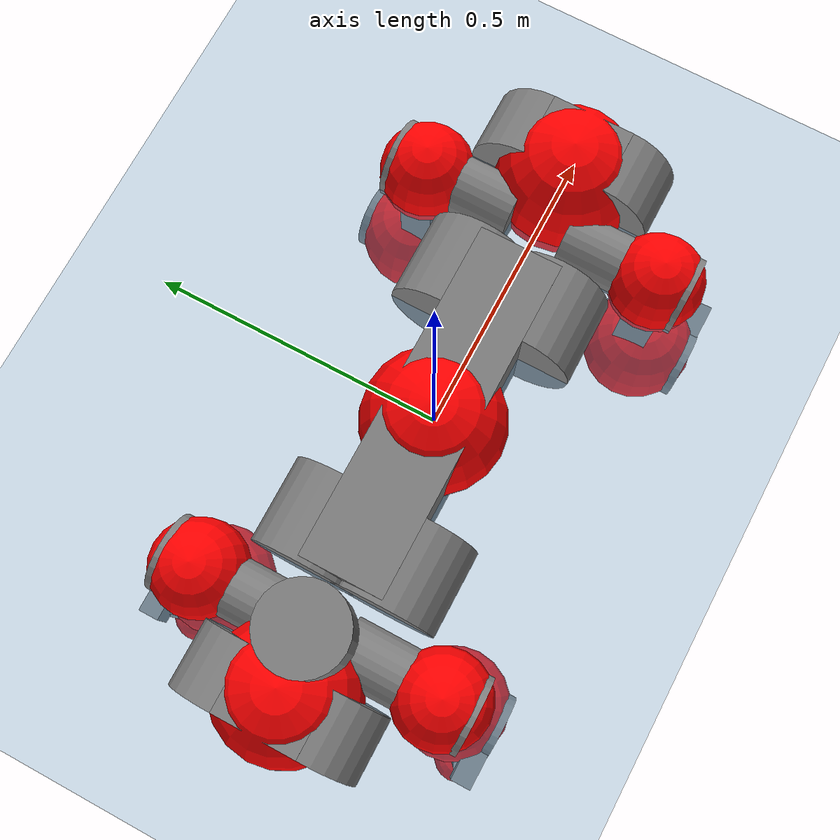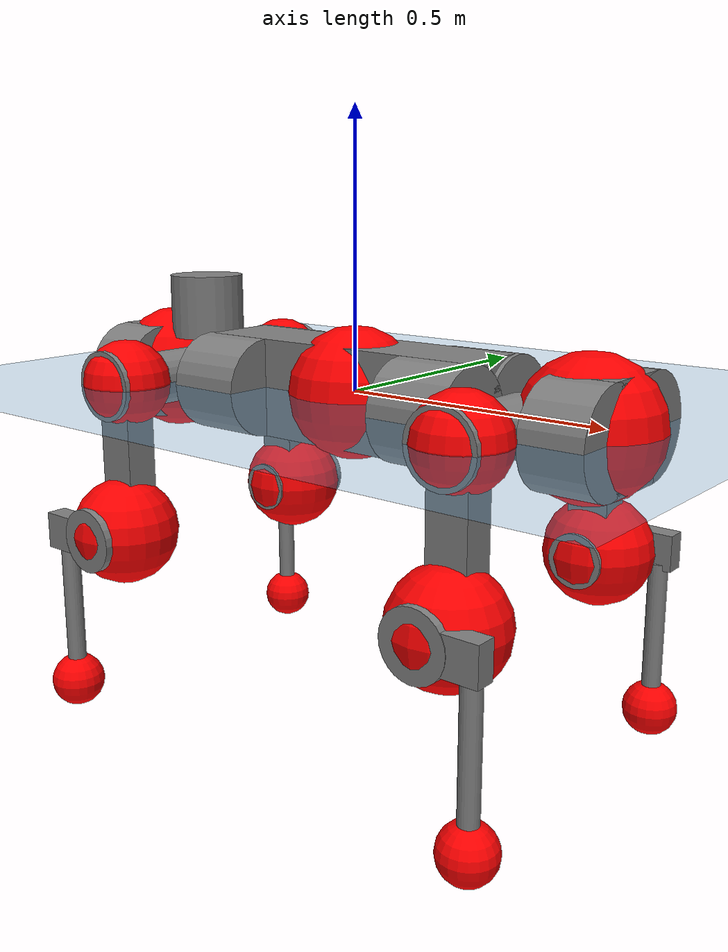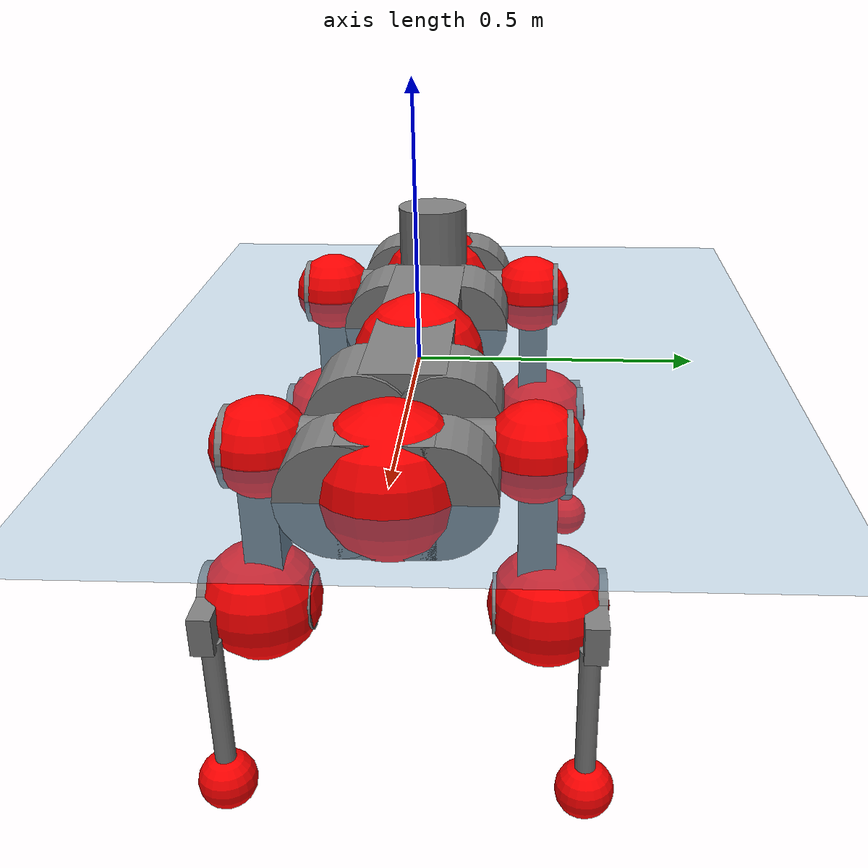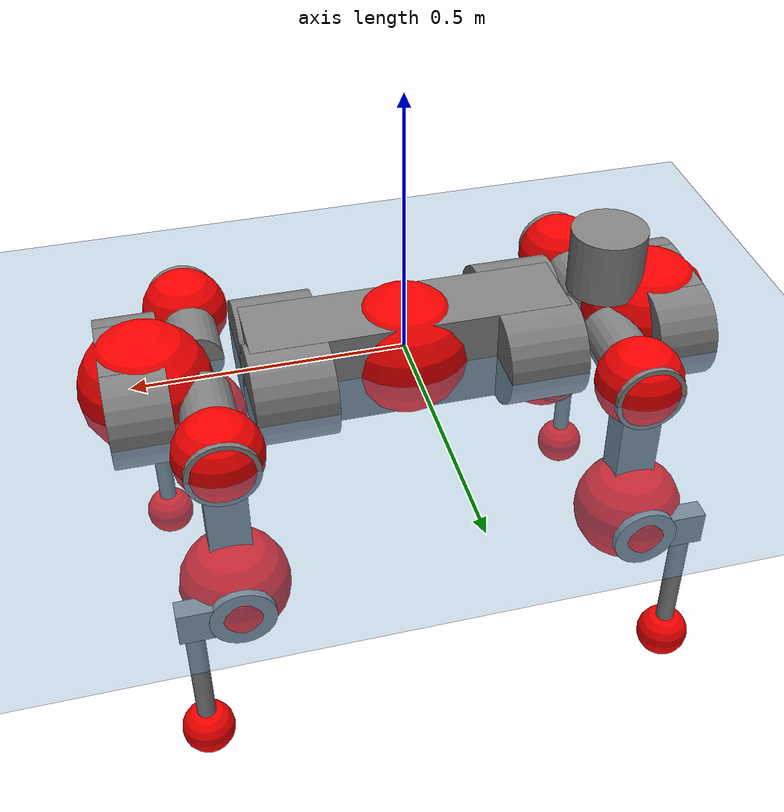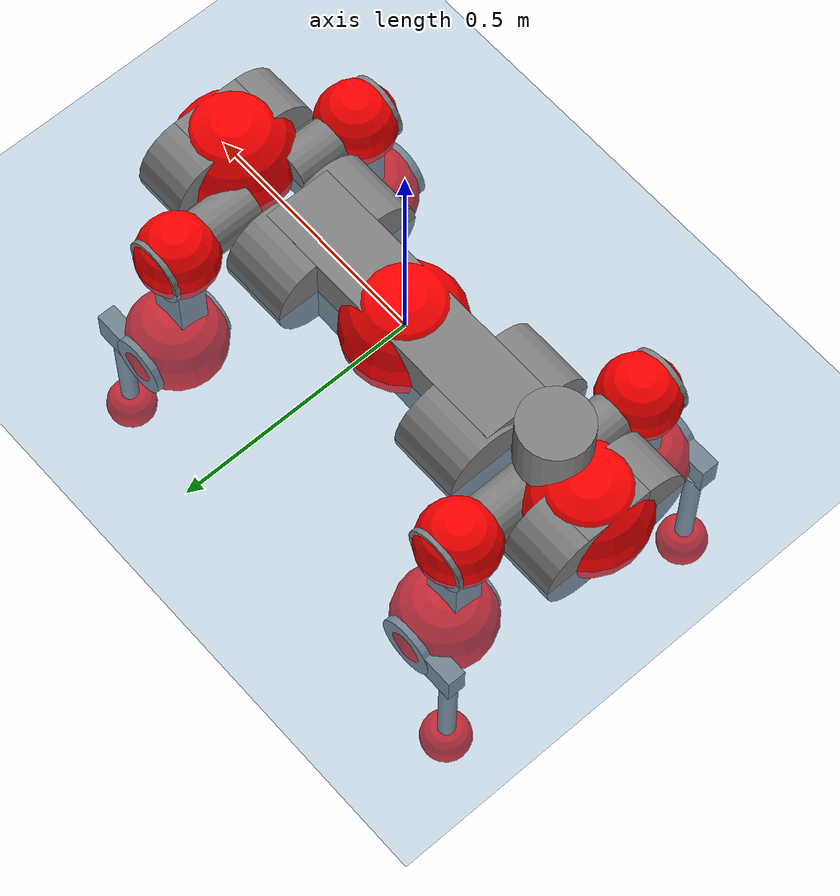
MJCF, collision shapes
<mujoco model="anymal_c">
  <compiler angle="radian" assetdir="assets" balanceinertia="true" inertiafromgeom="false"/>

  <option timestep="0.005" density="1.2" viscosity="2e-05"/>

  <size nkey="1"/>

  <visual>
    <quality shadowsize="8192"/>
    <map shadowclip="0.5"/>
  </visual>

  <default>
    <default class="/">
      <material specular="0" shininess="0.25"/>
      <geom contype="0" conaffinity="0" group="1" solref="-1000 -80"/>
      <site size="0.01 0.005 0.005" group="5"/>
      <general forcelimited="true" forcerange="-80 80" biastype="affine" gainprm="80" biasprm="0 -80 -2"/>
      <default class="anymal_c">
        <joint armature="0.01" damping="0.01" frictionloss="0.1"/>
        <default class="visual">
          <geom type="mesh" group="2"/>
          <default class="visual_zflip"/>
        </default>
        <default class="collision">
          <geom type="cylinder" group="3"/>
          <default class="foot">
            <geom size="0.03 0 0" type="sphere" condim="6" priority="1" friction="0.8 0.02 0.01" solimp="0.015 1 0.03"/>
          </default>
        </default>
      </default>
      <default class="reward_collision_sphere">
        <geom group="5" rgba="1 0 0 1"/>
      </default>
    </default>
  </default>

  <asset>
    <texture type="skybox" colorspace="auto" name="//unnamed_texture_0" builtin="gradient" rgb1="0.95 0.95 0.95" rgb2="0.95 0.95 0.95" width="100" height="600"/>
    <texture type="2d" colorspace="auto" name="texplane" builtin="checker" rgb1="0.345 0.575 0.748" rgb2="0.345 0.575 0.748" markrgb="1 1 1" width="512" height="512"/>
    <texture type="2d" colorspace="linear" name="base" file="base.png"/>
    <texture type="2d" colorspace="linear" name="top_shell" file="top_shell.png"/>
    <texture type="2d" colorspace="linear" name="bottom_shell" file="bottom_shell.png"/>
    <texture type="2d" colorspace="linear" name="remote" file="remote.png"/>
    <texture type="2d" colorspace="linear" name="hatch" file="hatch.png"/>
    <texture type="2d" colorspace="linear" name="handle" file="handle.png"/>
    <texture type="2d" colorspace="linear" name="face" file="face.png"/>
    <texture type="2d" colorspace="linear" name="battery" file="battery.png"/>
    <texture type="2d" colorspace="linear" name="lidar_cage" file="lidar_cage.png"/>
    <texture type="2d" colorspace="linear" name="depth_camera" file="depth_camera.png"/>
    <texture type="2d" colorspace="linear" name="wide_angle_camera" file="wide_angle_camera.png"/>
    <texture type="2d" colorspace="linear" name="lidar" file="lidar.png"/>
    <texture type="2d" colorspace="linear" name="drive" file="drive.png"/>
    <texture type="2d" colorspace="linear" name="hip_l" file="hip_l.png"/>
    <texture type="2d" colorspace="linear" name="shank_l" file="shank_l.png"/>
    <texture type="2d" colorspace="linear" name="foot" file="foot.png"/>
    <texture type="2d" colorspace="linear" name="thigh" file="thigh.png"/>
    <texture type="2d" colorspace="linear" name="shank_r" file="shank_r.png"/>
    <texture type="2d" colorspace="linear" name="hip_r" file="hip_r.png"/>
    <material name="MatPlane" class="/" texture="texplane" texuniform="true" texrepeat="2 2" specular="0.9" shininess="0.5"/>
    <material name="black_plastic" class="/" rgba="0.007 0.007 0.007 1"/>
    <material name="green" class="/" rgba="0.052 0.178 0.033 1"/>
    <material name="red" class="/" rgba="0.178 0.006 0.005 1"/>
    <material name="yellow" class="/" rgba="0.178 0.119 0.006 1"/>
    <material name="lwl" class="/" rgba="0.8 0.8 0.8 1"/>
    <material name="base" class="/" texture="base"/>
    <material name="top_shell" class="/" texture="top_shell"/>
    <material name="bottom_shell" class="/" texture="bottom_shell"/>
    <material name="hip_l" class="/" texture="hip_l"/>
    <material name="thigh" class="/" texture="thigh"/>
    <material name="shank_l" class="/" texture="shank_l"/>
    <material name="foot" class="/" texture="foot"/>
    <material name="hip_r" class="/" texture="hip_r"/>
    <material name="shank" class="/" texture="shank_r"/>
    <material name="hatch" class="/" texture="hatch"/>
    <material name="remote" class="/" texture="remote"/>
    <material name="handle" class="/" texture="handle"/>
    <material name="face" class="/" texture="face"/>
    <material name="depth_camera" class="/" texture="depth_camera"/>
    <material name="wide_angle_camera" class="/" texture="wide_angle_camera"/>
    <material name="battery" class="/" texture="battery"/>
    <material name="lidar_cage" class="/" texture="lidar_cage"/>
    <material name="lidar" class="/" texture="lidar"/>
    <material name="drive" class="/" texture="drive"/>
    <mesh name="base_0" class="/" file="base_0.obj"/>
    <mesh name="base_1" class="/" file="base_1.obj"/>
    <mesh name="base_2" class="/" file="base_2.obj"/>
    <mesh name="base_3" class="/" file="base_3.obj"/>
    <mesh name="base_4" class="/" file="base_4.obj"/>
    <mesh name="base_5" class="/" file="base_5.obj"/>
    <mesh name="top_shell" class="/" file="top_shell.obj"/>
    <mesh name="bottom_shell" class="/" file="bottom_shell.obj"/>
    <mesh name="remote" class="/" file="remote.obj"/>
    <mesh name="handle" class="/" file="handle.obj"/>
    <mesh name="face" class="/" file="face.obj"/>
    <mesh name="wide_angle_camera" class="/" file="wide_angle_camera.obj"/>
    <mesh name="depth_camera" class="/" file="depth_camera.obj"/>
    <mesh name="battery" class="/" file="battery.obj"/>
    <mesh name="lidar_cage" class="/" file="lidar_cage.obj"/>
    <mesh name="lidar" class="/" file="lidar.obj"/>
    <mesh name="drive" class="/" file="drive.obj"/>
    <mesh name="hip_l" class="/" file="hip_l.obj"/>
    <mesh name="thigh" class="/" file="thigh.obj"/>
    <mesh name="shank_l" class="/" file="shank_l.obj"/>
    <mesh name="foot" class="/" file="foot.obj"/>
    <mesh name="hip_r" class="/" file="hip_r.obj"/>
    <mesh name="hatch" class="/" file="hatch.obj"/>
    <mesh name="shank_r" class="/" file="shank_r.obj"/>
  </asset>

  <worldbody>
    <geom name="floor" class="/" size="100 100 0.125" type="plane" group="0" material="MatPlane"/>
    <light name="toplight_shadow" class="/" pos="0 0 5" dir="0.0990148 0.0990148 -0.990148" type="directional" ambient="0.04 0.04 0.04" diffuse="0.55 0.55 0.55" specular="0.12 0.12 0.12"/>
    <light name="toplight_fill" class="/" pos="0 0 5" dir="0.0990148 0.0990148 -0.990148" type="directional" castshadow="false" ambient="0.04 0.04 0.04" diffuse="0.3 0.3 0.3" specular="0.08 0.08 0.08"/>
    <body name="trunk" childclass="anymal_c" pos="-0.00095985 5.26553e-05 -0.00247662" quat="0.999999 0.00108905 -0.000715519 -0.000318335">
      <inertial pos="0.00242609 0.00262563 0.0470277" quat="0.50132 0.502475 0.488715 0.507301" mass="19.6705" diaginertia="0.856786 0.642958 0.20541"/>
      <joint name="//unnamed_joint_0" type="free" armature="0" damping="0" frictionloss="0"/>
      <geom name="//unnamed_geom_1" class="visual" material="green" mesh="base_0"/>
      <geom name="//unnamed_geom_2" class="visual" material="yellow" mesh="base_1"/>
      <geom name="//unnamed_geom_3" class="visual" material="red" mesh="base_2"/>
      <geom name="//unnamed_geom_4" class="visual" material="black_plastic" mesh="base_3"/>
      <geom name="//unnamed_geom_5" class="visual" material="lwl" mesh="base_4"/>
      <geom name="//unnamed_geom_6" class="visual" material="base" mesh="base_5"/>
      <geom name="trunk_1" class="collision" size="0.293147 0.0707597 0.0909767" type="box"/>
      <geom name="trunk_2" class="collision" size="0.0909767 0.0732868" pos="0.228748 0.0698642 0" quat="0.707107 0 0.707107 0"/>
      <geom name="trunk_3" class="collision" size="0.0909767 0.0732868" pos="-0.228748 0.0698642 0" quat="0.707107 0 0.707107 0"/>
      <geom name="trunk_4" class="collision" size="0.0909767 0.0732868" pos="0.228748 -0.0698642 0" quat="0.707107 0 0.707107 0"/>
      <geom name="trunk_5" class="collision" size="0.0909767 0.0732868" pos="-0.228748 -0.0698642 0" quat="0.707107 0 0.707107 0"/>
      <geom name="//unnamed_geom_12" class="visual" material="top_shell" mesh="top_shell"/>
      <geom name="//unnamed_geom_13" class="visual" material="bottom_shell" mesh="bottom_shell"/>
      <geom name="//unnamed_geom_14" class="visual" material="remote" mesh="remote"/>
      <geom name="//unnamed_geom_15" class="visual" material="handle" mesh="handle"/>
      <geom name="//unnamed_geom_16" class="visual" pos="0.435936 0 0" quat="1 0 0 0" material="face" mesh="face"/>
      <geom name="trunk_6" class="collision" size="0.0555969 0.0707597 0.0909767" pos="0.493781 0 0" type="box"/>
      <geom name="//unnamed_geom_18" class="collision" size="0.0909767 0.0555969" pos="0.493781 0.0698642 0" quat="0.707107 0 0.707107 0"/>
      <geom name="//unnamed_geom_19" class="collision" size="0.0909767 0.0555969" pos="0.493781 -0.0698642 0" quat="0.707107 0 0.707107 0"/>
      <geom name="//unnamed_geom_20" class="visual" pos="0.485522 0 -0.0281733" quat="0.965926 0 0.258819 0" material="depth_camera" mesh="depth_camera"/>
      <geom name="//unnamed_geom_21" class="visual" pos="0.53953 0 0.0147122" material="wide_angle_camera" mesh="wide_angle_camera"/>
      <geom name="//unnamed_geom_22" class="visual_zflip" pos="-0.435936 0 0" quat="0 0 0 1" material="face" mesh="face"/>
      <geom name="trunk_7" class="collision" size="0.0555969 0.0707597 0.0909767" pos="-0.493781 0 0" quat="0 0 0 1" type="box"/>
      <geom name="//unnamed_geom_24" class="collision" size="0.0909767 0.0555969" pos="-0.493781 -0.0698642 0" quat="0 -0.707107 0 0.707107"/>
      <geom name="//unnamed_geom_25" class="collision" size="0.0909767 0.0555969" pos="-0.493781 0.0698642 0" quat="0 -0.707107 0 0.707107"/>
      <geom name="//unnamed_geom_26" class="visual" pos="-0.485522 0 -0.0281733" quat="0 -0.258819 0 0.965926" material="depth_camera" mesh="depth_camera"/>
      <geom name="//unnamed_geom_27" class="visual_zflip" pos="-0.53953 0 0.0147122" quat="0 0 0 1" material="wide_angle_camera" mesh="wide_angle_camera"/>
      <geom name="//unnamed_geom_28" class="visual" material="battery" mesh="battery"/>
      <geom name="//unnamed_geom_29" class="visual" pos="0 0.0756047 0.0290737" quat="0.683013 -0.183013 0.183013 0.683013" material="depth_camera" mesh="depth_camera"/>
      <geom name="//unnamed_geom_30" class="visual" pos="0 -0.0756047 0.0290737" quat="0.683013 0.183013 0.183013 -0.683013" material="depth_camera" mesh="depth_camera"/>
      <geom name="//unnamed_geom_31" class="visual" pos="-0.382825 0 0.0722345" quat="1 0 0 0" material="lidar_cage" mesh="lidar_cage"/>
      <geom name="trunk_8" class="collision" size="0.0707597 0.0606511" pos="-0.382825 0 0.131201"/>
      <geom name="//unnamed_geom_33" class="visual" pos="-0.382825 -2.10803e-05 0.139752" quat="0.707107 0 0 -0.707107" material="lidar" mesh="lidar"/>
      <geom name="//unnamed_geom_34" class="visual" pos="0.31541 0.103793 2.63538e-10" quat="0.258819 0.965926 0 0" material="drive" mesh="drive"/>
      <geom name="//unnamed_geom_35" class="visual" pos="0.31541 -0.103793 -2.63538e-10" quat="0.258819 -0.965926 0 0" material="drive" mesh="drive"/>
      <geom name="//unnamed_geom_36" class="visual" pos="-0.31541 0.103793 -2.63538e-10" quat="0 0 0.965926 -0.258819" material="drive" mesh="drive"/>
      <geom name="//unnamed_geom_37" class="visual" pos="-0.31541 -0.103793 2.63538e-10" quat="0 0 -0.965926 -0.258819" material="drive" mesh="drive"/>
      <geom name="//unnamed_geom_38" class="visual" pos="0.121999 0 0.0717431" quat="1 0 0 0" material="hatch" mesh="hatch"/>
      <geom name="//unnamed_geom_39" class="reward_collision_sphere" size="0.121302"/>
      <geom name="//unnamed_geom_40" class="reward_collision_sphere" size="0.121302" pos="0.473272 0 0"/>
      <geom name="//unnamed_geom_41" class="reward_collision_sphere" size="0.121302" pos="-0.473272 0 0"/>
      <site name="imu" pos="0.256507 0.0180766 0.0319291" size="0.0101085"/>
      <camera name="track" pos="0 -1.99612 0" quat="0.707107 0.707107 0 0" mode="trackcom"/>
      <camera name="ego_camera" pos="0.473272 0 -0.0393113" quat="-0.5 -0.5 0.5 0.5"/>
      <body name="LF_HIP" pos="0.316317 0.104789 0.0023782" quat="0.258948 0.965891 0.00016758 -4.16124e-05">
        <inertial pos="0.0569012 -0.0145921 -0.0104347" quat="-0.116592 0.711766 -0.130114 0.680342" mass="2.80276" diaginertia="0.00759911 0.00478012 0.00295106"/>
        <joint name="LF_HAA" pos="0 0 0" axis="0.999929 0.0072679 -0.00943096" range="-0.728832 0.52152" armature="0.010016" damping="0" frictionloss="0.109183"/>
        <geom name="//unnamed_geom_42" class="visual" pos="0 1.55027e-05 -2.54631e-06" quat="0.258819 -0.965926 0 0" material="hip_l" mesh="hip_l"/>
        <geom name="//unnamed_geom_43" class="visual" pos="0.0629978 -0.0756233 -0.0435482" quat="0.183013 -0.683013 0.683013 0.183013" material="drive" mesh="drive"/>
        <geom name="//unnamed_geom_44" class="collision" size="0.0505426 0.0707597" pos="0.0629978 -0.0119366 -0.00678611" quat="-0.353553 -0.612372 0.612372 -0.353553"/>
        <body name="LF_THIGH" pos="0.0606451 -0.0708373 -0.0387798" quat="0.183113 -0.683087 0.682881 0.183128">
          <inertial pos="0.032597 0.000605334 -0.241496" quat="0.993112 -0.00550538 -0.080692 0.0847757" mass="3.0291" diaginertia="0.0371059 0.0285892 0.00357524"/>
          <joint name="LF_HFE" pos="0 0 0" axis="0.999999 -0.000167268 0.00124026" stiffness="4.85417e-05" range="-3.18213 3.14169" armature="0.00893697" damping="0.0204141" frictionloss="0.101303"/>
          <geom name="//unnamed_geom_45" class="visual" pos="0.00106756 1.68222e-06 0" quat="0.707107 0 0 -0.707107" material="thigh" mesh="thigh"/>
          <geom name="//unnamed_geom_46" class="collision" size="0.0657054 0.0404341" pos="0.0420686 0 0" quat="0.5 0.5 -0.5 -0.5"/>
          <geom name="//unnamed_geom_47" class="collision" size="0.037907 0.0303256 0.142848" pos="0.0315515 0 -0.138881" quat="0.707107 0 0 -0.707107" type="box"/>
          <geom name="//unnamed_geom_48" class="visual" pos="0.105487 0 -0.280093" quat="1 0 0 0" material="drive" mesh="drive"/>
          <geom name="//unnamed_geom_49" class="collision" size="0.0505426 0.0707597" pos="0.031867 0 -0.280093" quat="0.707107 0 0.707107 0"/>
          <geom name="//unnamed_geom_50" class="reward_collision_sphere" size="0.0808682" pos="0.0262929 0 0"/>
          <body name="LF_SHANK" pos="0.104973 0.000396163 -0.281332" quat="1 -2.15323e-06 2.37477e-06 -8.19017e-07">
            <inertial pos="0.00361543 -0.063732 -0.079553" quat="0.992982 -0.115599 -0.00135262 -0.0249531" mass="0.607604" diaginertia="0.0125792 0.00902932 0.00102018"/>
            <joint name="LF_KFE" pos="0 0 0" axis="0.999992 -0.000406082 0.00395145" range="-3.18397 3.17754" armature="0.0103999" damping="0.0137006" frictionloss="0.113046"/>
            <geom name="//unnamed_geom_51" class="visual" pos="0.000348108 0.00185613 0" quat="0.707107 0 0 -0.707107" material="shank_l" mesh="shank_l"/>
            <geom name="LF_kfe_act" class="collision" size="0.0606511 0.020217" pos="0.0210343 0 0" quat="0.5 0.5 -0.5 -0.5"/>
            <geom name="//unnamed_geom_53" class="collision" size="0.058123 0.0341163 0.0192062" pos="0.0210343 -0.0573874 0" quat="0.5 0.5 -0.5 -0.5" type="box"/>
            <geom name="//unnamed_geom_54" class="visual" pos="0.0137248 -0.0871812 -0.332151" quat="0.382683 0 0 -0.92388" material="foot" mesh="foot"/>
            <geom name="LF_calf" class="collision" size="0.0176899 0.142785" pos="0.0137249 -0.0877793 -0.166075" quat="0.707107 0 0 -0.707107"/>
            <geom name="LF_foot" class="foot" size="0.0298909" pos="0.0137249 -0.0877793 -0.310038" quat="0.707107 0 0 -0.707107"/>
            <geom name="//unnamed_geom_57" class="reward_collision_sphere" size="0.101085" pos="-0.0525858 0 0"/>
            <geom name="//unnamed_geom_58" class="reward_collision_sphere" size="0.0505426" pos="0.0137249 -0.0877793 -0.310038"/>
            <site name="LF_foot" class="foot" pos="0.0137249 -0.0877793 -0.310038" quat="0.707107 0 0 -0.707107" size="0.0101085"/>
          </body>
        </body>
      </body>
      <body name="RF_HIP" pos="0.314445 -0.103503 0.00199721" quat="0.258996 -0.965878 0.00100464 -7.95239e-05">
        <inertial pos="0.0592038 0.0155185 -0.00832653" quat="0.132673 0.680368 0.116308 0.711315" mass="2.96604" diaginertia="0.00745633 0.00485094 0.00298502"/>
        <joint name="RF_HAA" pos="0 0 0" axis="0.999981 0.00473552 -0.0039577" range="-0.543136 0.691926" armature="0.00980845" damping="0" frictionloss="0.11257"/>
        <geom name="//unnamed_geom_59" class="visual" pos="0 -1.55026e-05 -2.54631e-06" quat="0.258819 0.965926 0 0" material="hip_r" mesh="hip_r"/>
        <geom name="//unnamed_geom_60" class="visual" pos="0.0629978 0.0756233 -0.0435482" quat="0.183013 0.683013 0.683013 -0.183013" material="drive" mesh="drive"/>
        <geom name="//unnamed_geom_61" class="collision" size="0.0505426 0.0707597" pos="0.0629978 0.0119366 -0.00678611" quat="-0.353553 0.612372 0.612372 0.353553"/>
        <body name="RF_THIGH" pos="0.0638332 0.0701485 -0.0416358" quat="0.183098 0.683264 0.682769 -0.182898">
          <inertial pos="0.0313065 0.000334423 -0.240889" quat="0.993025 -0.00471113 -0.0797941 0.0866722" mass="3.27942" diaginertia="0.0390856 0.0285949 0.0038832"/>
          <joint name="RF_HFE" pos="0 0 0" axis="1 0.000598737 0.000650505" stiffness="0.0154553" range="-3.14068 3.10054" armature="0.00960024" damping="0.00166785" frictionloss="0.0872994"/>
          <geom name="//unnamed_geom_62" class="visual" pos="0.00106756 1.68222e-06 0" quat="0.707107 0 0 -0.707107" material="thigh" mesh="thigh"/>
          <geom name="//unnamed_geom_63" class="collision" size="0.0657054 0.0404341" pos="0.0420686 0 0" quat="0.5 0.5 0.5 0.5"/>
          <geom name="//unnamed_geom_64" class="collision" size="0.037907 0.0303256 0.142848" pos="0.0315515 0 -0.138881" quat="0.707107 0 0 0.707107" type="box"/>
          <geom name="//unnamed_geom_65" class="visual" pos="0.105487 0 -0.280093" quat="1 0 0 0" material="drive" mesh="drive"/>
          <geom name="//unnamed_geom_66" class="collision" size="0.0505426 0.0707597" pos="0.031867 0 -0.280093" quat="0.707107 0 0.707107 0"/>
          <geom name="//unnamed_geom_67" class="reward_collision_sphere" size="0.0808682" pos="0.0262929 0 0"/>
          <body name="RF_SHANK" pos="0.102547 -0.00048587 -0.280706" quat="1 -0.000282383 -0.000442393 -4.21848e-05">
            <inertial pos="0.00669943 0.058439 -0.0762779" quat="0.991779 0.12487 0.00553735 0.0274206" mass="0.595055" diaginertia="0.0126582 0.00914568 0.000963962"/>
            <joint name="RF_KFE" pos="0 0 0" axis="0.999998 0.00221026 -3.78302e-05" range="-3.13378 3.1564" armature="0.00992618" damping="0" frictionloss="0.0942413"/>
            <geom name="//unnamed_geom_68" class="visual" pos="0.000348106 -0.00185613 0" quat="0.707107 0 0 0.707107" material="shank" mesh="shank_r"/>
            <geom name="RF_kfe_act" class="collision" size="0.0606511 0.020217" pos="0.0210343 0 0" quat="0.5 0.5 0.5 0.5"/>
            <geom name="//unnamed_geom_70" class="collision" size="0.058123 0.0341163 0.0192062" pos="0.0210343 0.0573874 0" quat="0.5 0.5 0.5 0.5" type="box"/>
            <geom name="//unnamed_geom_71" class="visual" pos="0.013725 0.0871812 -0.332151" quat="0.382683 0 0 0.92388" material="foot" mesh="foot"/>
            <geom name="RF_calf" class="collision" size="0.0176899 0.142785" pos="0.0137249 0.0877793 -0.166075" quat="0.707107 0 0 0.707107"/>
            <geom name="RF_foot" class="foot" size="0.0277867" pos="0.0137249 0.0877793 -0.310038" quat="0.707107 0 0 0.707107"/>
            <geom name="//unnamed_geom_74" class="reward_collision_sphere" size="0.101085" pos="-0.0525858 0 0"/>
            <geom name="//unnamed_geom_75" class="reward_collision_sphere" size="0.0505426" pos="0.0137249 0.0877793 -0.310038"/>
            <site name="RF_foot" class="foot" pos="0.0137249 0.0877793 -0.310038" quat="0.707107 0 0 0.707107" size="0.0101085"/>
          </body>
        </body>
      </body>
      <body name="LH_HIP" pos="-0.314897 0.101996 0.00314451" quat="-2.55444e-05 -1.229e-05 0.965922 -0.258834">
        <inertial pos="0.0600171 0.0123275 -0.0106687" quat="0.134576 0.679402 0.125334 0.710347" mass="2.83158" diaginertia="0.00723767 0.00479236 0.00284507"/>
        <joint name="LH_HAA" pos="0 0 0" axis="0.999887 -0.0088349 -0.0121394" range="-0.549371 0.776224" armature="0.011484" damping="0.00944064" frictionloss="0.102783"/>
        <geom name="//unnamed_geom_76" class="visual" pos="0 -1.55026e-05 -2.54631e-06" quat="-0.258819 -0.965926 0 0" material="hip_r" mesh="hip_r"/>
        <geom name="//unnamed_geom_77" class="visual" pos="0.0629978 0.0756233 -0.0435482" quat="0.183013 0.683013 0.683013 -0.183013" material="drive" mesh="drive"/>
        <geom name="//unnamed_geom_78" class="collision" size="0.0505426 0.0707597" pos="0.0629978 0.0119366 -0.00678611" quat="-0.353553 0.612372 0.612372 0.353553"/>
        <body name="LH_THIGH" pos="0.0622814 0.0699319 -0.0402707" quat="0.184254 0.682646 0.682861 -0.183699">
          <inertial pos="0.0347201 -0.00275565 -0.243562" quat="0.992775 -0.00511325 -0.0806226 0.0887196" mass="3.2505" diaginertia="0.0412761 0.0299795 0.00405682"/>
          <joint name="LH_HFE" pos="0 0 0" axis="0.999915 0.000738297 0.0130142" stiffness="0.00305496" range="-3.18874 3.14292" armature="0.0103961" damping="0" frictionloss="0.106485"/>
          <geom name="//unnamed_geom_79" class="visual" pos="0.00106756 1.68222e-06 0" quat="0.707107 0 0 -0.707107" material="thigh" mesh="thigh"/>
          <geom name="//unnamed_geom_80" class="collision" size="0.0657054 0.0404341" pos="0.0420686 0 0" quat="0.5 0.5 -0.5 -0.5"/>
          <geom name="//unnamed_geom_81" class="collision" size="0.037907 0.0303256 0.142848" pos="0.0315515 0 -0.138881" quat="0.707107 0 0 -0.707107" type="box"/>
          <geom name="//unnamed_geom_82" class="visual" pos="0.105487 0 -0.280093" quat="1 0 0 0" material="drive" mesh="drive"/>
          <geom name="//unnamed_geom_83" class="collision" size="0.0505426 0.0707597" pos="0.031867 0 -0.280093" quat="0.707107 0 0.707107 0"/>
          <geom name="//unnamed_geom_84" class="reward_collision_sphere" size="0.0808682" pos="0.0262929 0 0"/>
          <body name="LH_SHANK" pos="0.103771 -0.000373435 -0.282081" quat="0.999999 -0.000892171 -0.000756265 -0.000910138">
            <inertial pos="0.00322212 0.0633285 -0.0815506" quat="0.993754 0.109693 -0.0104301 0.0176591" mass="0.589012" diaginertia="0.012622 0.00869107 0.00100425"/>
            <joint name="LH_KFE" pos="0 0 0" axis="0.999969 -8.4283e-05 0.00785484" stiffness="0.000281304" range="-3.16352 3.0975" armature="0.011535" damping="0" frictionloss="0.102648"/>
            <geom name="//unnamed_geom_85" class="visual" pos="0.000348106 -0.00185613 0" quat="-0.707107 0 0 -0.707107" material="shank" mesh="shank_r"/>
            <geom name="LH_kfe_act" class="collision" size="0.0606511 0.020217" pos="0.0210343 0 0" quat="0.5 0.5 -0.5 -0.5"/>
            <geom name="//unnamed_geom_87" class="collision" size="0.058123 0.0341163 0.0192062" pos="0.0210343 0.0573874 0" quat="0.5 0.5 -0.5 -0.5" type="box"/>
            <geom name="//unnamed_geom_88" class="visual" pos="0.013725 0.0871812 -0.332151" quat="-0.382683 0 0 -0.92388" material="foot" mesh="foot"/>
            <geom name="LH_calf" class="collision" size="0.0176899 0.142785" pos="0.0137249 0.0877793 -0.166075" quat="0.707107 0 0 -0.707107"/>
            <geom name="LH_foot" class="foot" size="0.0321125" pos="0.0137249 0.0877793 -0.310038" quat="0.707107 0 0 -0.707107"/>
            <geom name="//unnamed_geom_91" class="reward_collision_sphere" size="0.101085" pos="-0.0525858 0 0"/>
            <geom name="//unnamed_geom_92" class="reward_collision_sphere" size="0.0505426" pos="0.0137249 0.0877793 -0.310038"/>
            <site name="LH_foot" class="foot" pos="0.0137249 0.0877793 -0.310038" quat="0.707107 0 0 -0.707107" size="0.0101085"/>
          </body>
        </body>
      </body>
      <body name="RH_HIP" pos="-0.313103 -0.104524 0.00328945" quat="1.5642e-05 -0.000198064 -0.965876 -0.259006">
        <inertial pos="0.0568381 -0.0173952 -0.00822429" quat="-0.126316 0.710762 -0.148288 0.675923" mass="2.88354" diaginertia="0.00802519 0.00505529 0.00317354"/>
        <joint name="RH_HAA" pos="0 0 0" axis="0.999938 -0.0106687 -0.00311365" stiffness="0.000700079" range="-0.74975 0.493325" armature="0.0100183" damping="0.00993375" frictionloss="0.112345"/>
        <geom name="//unnamed_geom_93" class="visual" pos="0 1.55027e-05 -2.54631e-06" quat="-0.258819 0.965926 0 0" material="hip_l" mesh="hip_l"/>
        <geom name="//unnamed_geom_94" class="visual" pos="0.0629978 -0.0756233 -0.0435482" quat="-0.183013 0.683013 -0.683013 -0.183013" material="drive" mesh="drive"/>
        <geom name="//unnamed_geom_95" class="collision" size="0.0505426 0.0707597" pos="0.0629978 -0.0119366 -0.00678611" quat="0.353553 0.612372 -0.612372 0.353553"/>
        <body name="RH_THIGH" pos="0.0635677 -0.0719336 -0.0432941" quat="-0.182807 0.682919 -0.683283 -0.182559">
          <inertial pos="0.0335543 -0.00171687 -0.244082" quat="0.993846 0.00476298 -0.0776991 0.0788048" mass="3.08748" diaginertia="0.0403751 0.0295237 0.00380655"/>
          <joint name="RH_HFE" pos="0 0 0" axis="0.999986 -0.0012871 0.00521993" range="-3.1289 3.09087" armature="0.0100491" damping="0.00282052" frictionloss="0.104105"/>
          <geom name="//unnamed_geom_96" class="visual" pos="0.00106756 1.68222e-06 0" quat="0.707107 0 0 -0.707107" material="thigh" mesh="thigh"/>
          <geom name="//unnamed_geom_97" class="collision" size="0.0657054 0.0404341" pos="0.0420686 0 0" quat="0.5 0.5 0.5 0.5"/>
          <geom name="//unnamed_geom_98" class="collision" size="0.037907 0.0303256 0.142848" pos="0.0315515 0 -0.138881" quat="0.707107 0 0 0.707107" type="box"/>
          <geom name="//unnamed_geom_99" class="visual" pos="0.105487 0 -0.280093" quat="1 0 0 0" material="drive" mesh="drive"/>
          <geom name="//unnamed_geom_100" class="collision" size="0.0505426 0.0707597" pos="0.031867 0 -0.280093" quat="0.707107 0 0.707107 0"/>
          <geom name="//unnamed_geom_101" class="reward_collision_sphere" size="0.0808682" pos="0.0262929 0 0"/>
          <body name="RH_SHANK" pos="0.103045 0.00313378 -0.282329" quat="0.999999 0.000115186 -0.000896809 -0.000569267">
            <inertial pos="0.00586317 -0.0613657 -0.079578" quat="0.991299 -0.129319 -0.00230362 -0.0244415" mass="0.631478" diaginertia="0.0135974 0.00957486 0.0010176"/>
            <joint name="RH_KFE" pos="0 0 0" axis="0.999925 -0.0038285 0.0116375" range="-3.0718 3.14957" armature="0.0102379" damping="0" frictionloss="0.103631"/>
            <geom name="//unnamed_geom_102" class="visual" pos="0.000348108 0.00185613 0" quat="0.707107 0 0 -0.707107" material="shank_l" mesh="shank_l"/>
            <geom name="RH_kfe_act" class="collision" size="0.0606511 0.020217" pos="0.0210343 0 0" quat="0.5 0.5 0.5 0.5"/>
            <geom name="//unnamed_geom_104" class="collision" size="0.058123 0.0341163 0.0192062" pos="0.0210343 -0.0573874 0" quat="0.5 0.5 0.5 0.5" type="box"/>
            <geom name="//unnamed_geom_105" class="visual" pos="0.0137248 -0.0871812 -0.332151" quat="0.382683 0 0 -0.92388" material="foot" mesh="foot"/>
            <geom name="RH_calf" class="collision" size="0.0176899 0.142785" pos="0.0137249 -0.0877793 -0.166075" quat="0.707107 0 0 0.707107"/>
            <geom name="RH_foot" class="foot" size="0.0280602" pos="0.0137249 -0.0877793 -0.310038" quat="0.707107 0 0 0.707107"/>
            <geom name="//unnamed_geom_108" class="reward_collision_sphere" size="0.101085" pos="-0.0525858 0 0"/>
            <geom name="//unnamed_geom_109" class="reward_collision_sphere" size="0.0505426" pos="0.0137249 -0.0877793 -0.310038"/>
            <site name="RH_foot" class="foot" pos="0.0137249 -0.0877793 -0.310038" quat="0.707107 0 0 0.707107" size="0.0101085"/>
          </body>
        </body>
      </body>
    </body>
  </worldbody>

  <contact>
    <pair class="/" geom1="floor" geom2="LF_foot" name="//unnamed_contact_0"/>
    <pair class="/" geom1="floor" geom2="RF_foot" name="//unnamed_contact_1"/>
    <pair class="/" geom1="floor" geom2="LH_foot" name="//unnamed_contact_2"/>
    <pair class="/" geom1="floor" geom2="RH_foot" name="//unnamed_contact_3"/>
  </contact>

  <actuator>
    <general name="LF_HAA" class="/" joint="LF_HAA" forcerange="-80.5212 80.5212" gainprm="80.8789" biasprm="0 -80.8789 -1.83675"/>
    <general name="LF_HFE" class="/" joint="LF_HFE" forcerange="-77.7279 77.7279" gainprm="80.8789" biasprm="0 -80.8789 -1.83675"/>
    <general name="LF_KFE" class="/" joint="LF_KFE" forcerange="-87.0791 87.0791" gainprm="80.8789" biasprm="0 -80.8789 -1.83675"/>
    <general name="RF_HAA" class="/" joint="RF_HAA" forcerange="-84.7879 84.7879" gainprm="80.8789" biasprm="0 -80.8789 -1.83675"/>
    <general name="RF_HFE" class="/" joint="RF_HFE" forcerange="-88.5802 88.5802" gainprm="80.8789" biasprm="0 -80.8789 -1.83675"/>
    <general name="RF_KFE" class="/" joint="RF_KFE" forcerange="-79.5985 79.5985" gainprm="80.8789" biasprm="0 -80.8789 -1.83675"/>
    <general name="LH_HAA" class="/" joint="LH_HAA" forcerange="-79.8788 79.8788" gainprm="80.8789" biasprm="0 -80.8789 -1.83675"/>
    <general name="LH_HFE" class="/" joint="LH_HFE" forcerange="-73.4982 73.4982" gainprm="80.8789" biasprm="0 -80.8789 -1.83675"/>
    <general name="LH_KFE" class="/" joint="LH_KFE" forcerange="-89.7566 89.7566" gainprm="80.8789" biasprm="0 -80.8789 -1.83675"/>
    <general name="RH_HAA" class="/" joint="RH_HAA" forcerange="-80.9937 80.9937" gainprm="80.8789" biasprm="0 -80.8789 -1.83675"/>
    <general name="RH_HFE" class="/" joint="RH_HFE" forcerange="-80.7821 80.7821" gainprm="80.8789" biasprm="0 -80.8789 -1.83675"/>
    <general name="RH_KFE" class="/" joint="RH_KFE" forcerange="-87.3326 87.3326" gainprm="80.8789" biasprm="0 -80.8789 -1.83675"/>
  </actuator>

  <sensor>
    <gyro site="imu" name="imu_angular_velocity"/>
    <velocimeter site="imu" name="imu_linear_velocity"/>
    <framelinvel objtype="site" objname="LF_foot" name="LF_foot_global_linear_velocity"/>
    <framelinvel objtype="site" objname="RF_foot" name="RF_foot_global_linear_velocity"/>
    <framelinvel objtype="site" objname="LH_foot" name="LH_foot_global_linear_velocity"/>
    <framelinvel objtype="site" objname="RH_foot" name="RH_foot_global_linear_velocity"/>
  </sensor>

  <keyframe>
    <key name="home" qpos="0 0 0.55 1 0 0 0 0 0.4 -0.8 0 -0.4 0.8 0 -0.4 0.8 0 0.4 -0.8"/>
  </keyframe>
</mujoco>
